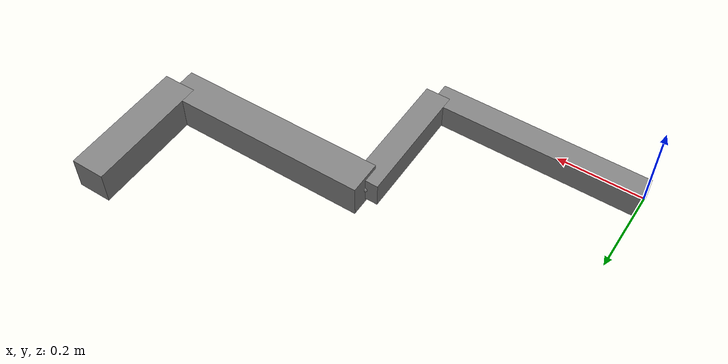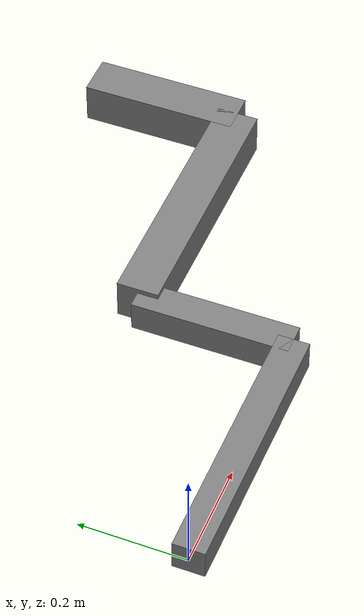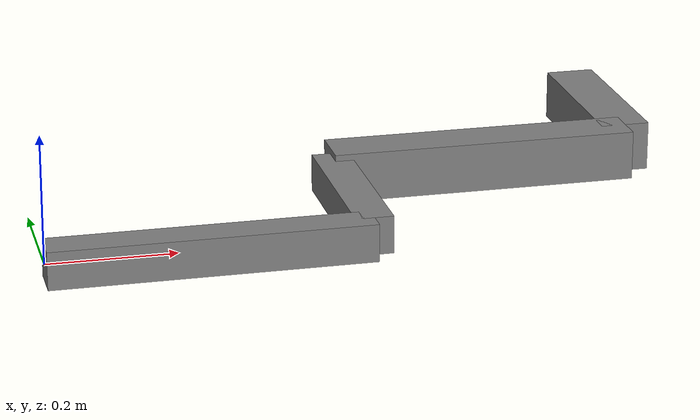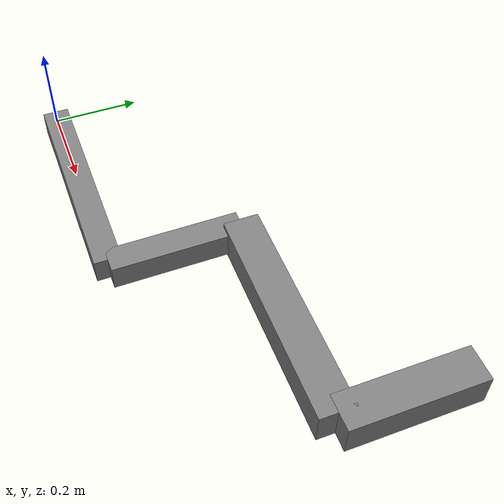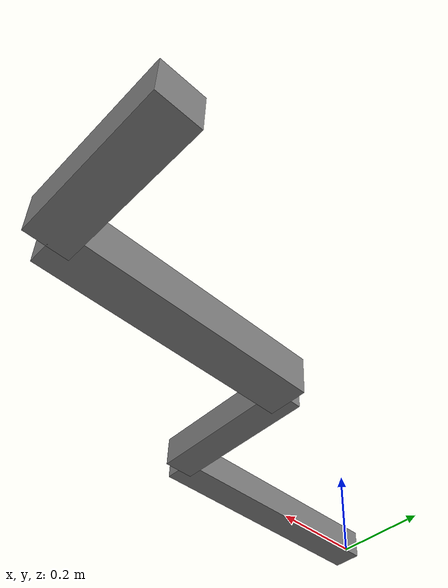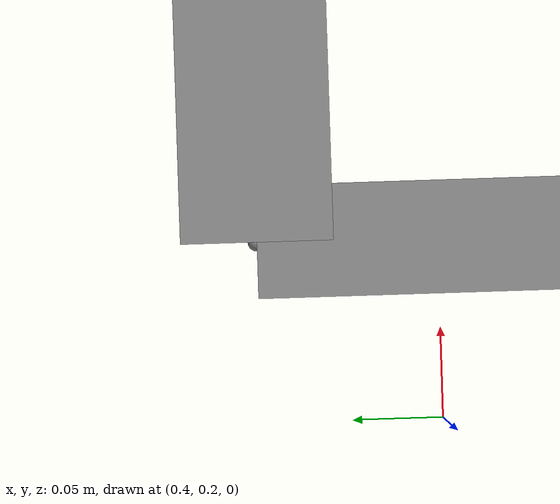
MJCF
<mujoco>
  <option integrator="implicit">
   <flag contact="disable"/>
  </option>

  <worldbody>
    <light pos="0 -1 1"/>

    <!-- body 1: pendulum on world ball joint, tilted -->
    <body name="upper">
      <joint type="ball"/>
      <geom type="box" size="0.03" fromto="0 0 0 0.5 0 0"/>
      <geom type="box" size="0.03" fromto="0.5 0 0 0.5 0.3 0"/>
      <site name="tip1" pos="0.5 0.3 0"/>
    </body>

    <!-- body 2: free body, positioned at tip of upper -->
    <body name="lower" pos="0.5 0.3 0">
      <freejoint/>
      <geom type="box" size="0.04" fromto="0 0 0 0.5 0 0"/>
      <geom type="box" size="0.04" fromto="0.5 0 0 0.5 0.3 0"/>
      <site name="tip2" pos="0 0 0"/>
    </body>
  </worldbody>

  <equality>
    <weld site1="tip1" site2="tip2" solimp="0 0.96 0.01" torquescale="0.1"/>
  </equality>
</mujoco>
